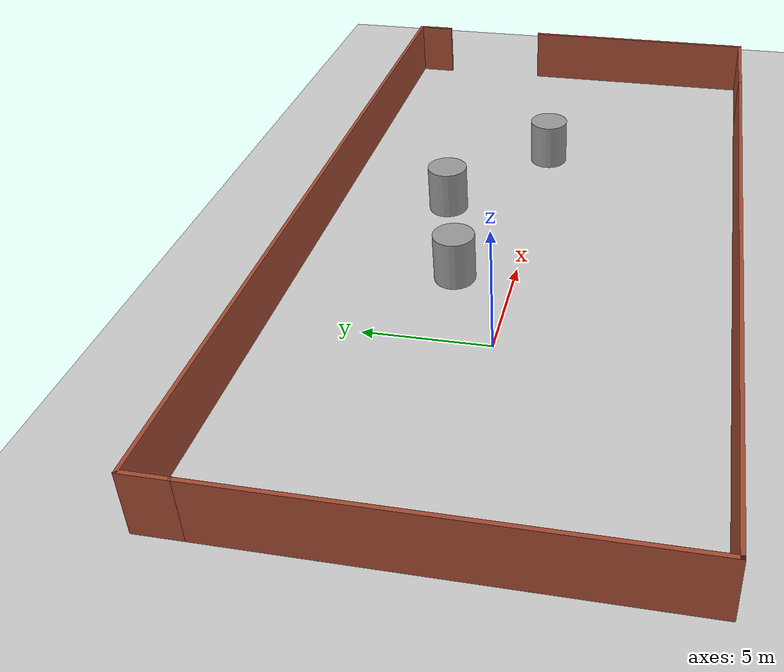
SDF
<sdf version="1.6">
 <world name="default">
  <light name="sun" type="directional">
   <pose>0 0 10 0 -0 0</pose>
   <diffuse>0.8 0.8 0.8 1</diffuse>
   <specular>0.1 0.1 0.1 1</specular>
   <attenuation>
    <range>1000</range>
    <constant>0.9</constant>
    <linear>0.01</linear>
    <quadratic>0.001</quadratic>
   </attenuation>
   <direction>-0.5 0.5 -1</direction>
  </light>
  <model name="ground_plane">
   <static>1</static>
   <link name="link">
    <collision name="collision">
     <geometry><plane><normal>0 0 1</normal><size>100 100</size></plane></geometry>
     <surface><friction><ode><mu>100</mu><mu2>50</mu2></ode></friction></surface>
    </collision>
    <visual name="visual">
     <cast_shadows>0</cast_shadows>
     <geometry><plane><normal>0 0 1</normal><size>100 100</size></plane></geometry>
     <material>
      <script><uri>file://media/materials/scripts/gazebo.material</uri><name>Gazebo/Grey</name></script>
     </material>
    </visual>
   </link>
  </model>
  <gravity>0 0 -9.8</gravity>
  <magnetic_field>6e-06 2.3e-05 -4.2e-05</magnetic_field>
  <atmosphere type="adiabatic"/>
  <physics name="default_physics" default="0" type="ode">
   <max_step_size>0.001</max_step_size>
   <real_time_factor>1</real_time_factor>
   <real_time_update_rate>1000</real_time_update_rate>
  </physics>
  <scene><ambient>0.4 0.4 0.4 1</ambient><background>0.7 0.7 0.7 1</background><shadows>1</shadows></scene>
  <spherical_coordinates>
   <surface_model>EARTH_WGS84</surface_model>
   <latitude_deg>0</latitude_deg>
   <longitude_deg>0</longitude_deg>
   <elevation>0</elevation>
   <heading_deg>0</heading_deg>
  </spherical_coordinates>
  <model name="Building_brick_2">
   <pose>6.86347 0.046159 0 0 -0 0</pose>
   <link name="Wall_1">
    <collision name="Wall_1_Collision">
     <geometry><box><size>16 0.15 2.5</size></box></geometry>
     <pose>0 0 1.25 0 -0 0</pose>
    </collision>
    <visual name="Wall_1_Visual">
     <pose>0 0 1.25 0 -0 0</pose>
     <geometry><box><size>16 0.15 2.5</size></box></geometry>
     <material>
      <script><uri>file://media/materials/scripts/gazebo.material</uri><name>Gazebo/Bricks</name></script>
      <ambient>1 1 1 1</ambient>
     </material>
    </visual>
    <pose>-17.1 -0.8 0 0 0 -1.5708</pose>
   </link>
   <link name="Wall_10">
    <collision name="Wall_10_Collision">
     <geometry><box><size>11 0.15 2.5</size></box></geometry>
     <pose>0 0 1.25 0 -0 0</pose>
    </collision>
    <visual name="Wall_10_Visual">
     <pose>0 0 1.25 0 -0 0</pose>
     <geometry><box><size>11 0.15 2.5</size></box></geometry>
     <material>
      <script><uri>file://media/materials/scripts/gazebo.material</uri><name>Gazebo/Bricks</name></script>
      <ambient>1 1 1 1</ambient>
     </material>
    </visual>
    <pose>17.1 -3.3 0 0 -0 1.5708</pose>
   </link>
   <link name="Wall_2">
    <collision name="Wall_2_Collision">
     <geometry><box><size>29.75 0.15 2.5</size></box></geometry>
     <pose>0 0 1.25 0 -0 0</pose>
    </collision>
    <visual name="Wall_2_Visual">
     <pose>0 0 1.25 0 -0 0</pose>
     <geometry><box><size>29.75 0.15 2.5</size></box></geometry>
     <material>
      <script><uri>file://media/materials/scripts/gazebo.material</uri><name>Gazebo/Bricks</name></script>
      <ambient>1 1 1 1</ambient>
     </material>
    </visual>
    <pose>-2.3 -8.725 0 0 -0 0</pose>
   </link>
   <link name="Wall_5">
    <collision name="Wall_5_Collision">
     <geometry><box><size>1.75 0.15 2.5</size></box></geometry>
     <pose>0 0 1.25 0 -0 0</pose>
    </collision>
    <visual name="Wall_5_Visual">
     <pose>0 0 1.25 0 -0 0</pose>
     <geometry><box><size>1.75 0.15 2.5</size></box></geometry>
     <material>
      <script><uri>file://media/materials/scripts/gazebo.material</uri><name>Gazebo/Bricks</name></script>
      <ambient>1 1 1 1</ambient>
     </material>
    </visual>
    <pose>-17.1 7.925 0 0 -0 1.5708</pose>
   </link>
   <link name="Wall_6">
    <collision name="Wall_6_Collision">
     <geometry><box><size>34.25 0.15 2.5</size></box></geometry>
     <pose>0 0 1.25 0 -0 0</pose>
    </collision>
    <visual name="Wall_6_Visual">
     <pose>0 0 1.25 0 -0 0</pose>
     <geometry><box><size>34.25 0.15 2.5</size></box></geometry>
     <material>
      <script><uri>file://media/materials/scripts/gazebo.material</uri><name>Gazebo/Bricks</name></script>
      <ambient>1 1 1 1</ambient>
     </material>
    </visual>
    <pose>-0.05 8.725 0 0 -0 0</pose>
   </link>
   <link name="Wall_7">
    <collision name="Wall_7_Collision">
     <geometry><box><size>1.75 0.15 2.5</size></box></geometry>
     <pose>0 0 1.25 0 -0 0</pose>
    </collision>
    <visual name="Wall_7_Visual">
     <pose>0 0 1.25 0 -0 0</pose>
     <geometry><box><size>1.75 0.15 2.5</size></box></geometry>
     <material>
      <script><uri>file://media/materials/scripts/gazebo.material</uri><name>Gazebo/Bricks</name></script>
      <ambient>1 1 1 1</ambient>
     </material>
    </visual>
    <pose>17 7.925 0 0 0 -1.5708</pose>
   </link>
   <link name="Wall_9">
    <collision name="Wall_9_Collision">
     <geometry><box><size>4.75 0.15 2.5</size></box></geometry>
     <pose>0 0 1.25 0 -0 0</pose>
    </collision>
    <visual name="Wall_9_Visual">
     <pose>0 0 1.25 0 -0 0</pose>
     <geometry><box><size>4.75 0.15 2.5</size></box></geometry>
     <material>
      <script><uri>file://media/materials/scripts/gazebo.material</uri><name>Gazebo/Bricks</name></script>
      <ambient>1 1 1 1</ambient>
     </material>
    </visual>
    <pose>14.8 -8.725 0 0 -0 0</pose>
   </link>
   <static>1</static>
  </model>
  <model name="obstaculo1_0_clone">
   <link name="link">
    <pose>3.16547 -0.242371 0.551515 0 -0 0</pose>
    <inertial>
     <mass>5.78895</mass>
     <inertia><ixx>3.04756</ixx><ixy>0</ixy><ixz>0</ixz><iyy>3.04756</iyy><iyz>0</iyz><izz>2.0444</izz></inertia>
    </inertial>
    <visual name="visual">
     <geometry><cylinder><radius>0.840424</radius><length>2.04901</length></cylinder></geometry>
     <material>
      <script><name>Gazebo/Grey</name><uri>file://media/materials/scripts/gazebo.material</uri></script>
      <ambient>0.3 0.3 0.3 1</ambient>
      <diffuse>0.7 0.7 0.7 1</diffuse>
      <specular>0.01 0.01 0.01 1</specular>
      <emissive>0 0 0 1</emissive>
     </material>
    </visual>
    <collision name="collision">
     <geometry><cylinder><radius>0.840424</radius><length>2.04901</length></cylinder></geometry>
     <surface>
      <friction>
       <ode><mu>1</mu><mu2>1</mu2><fdir1>0 0 0</fdir1><slip1>0</slip1><slip2>0</slip2></ode>
       <torsional>
        <coefficient>1</coefficient>
        <patch_radius>0</patch_radius>
        <surface_radius>0</surface_radius>
        <use_patch_radius>1</use_patch_radius>
        <ode><slip>0</slip></ode>
       </torsional>
      </friction>
      <bounce><restitution_coefficient>0</restitution_coefficient><threshold>1e+06</threshold></bounce>
      <contact>
       <collide_without_contact>0</collide_without_contact>
       <collide_without_contact_bitmask>1</collide_without_contact_bitmask>
       <collide_bitmask>1</collide_bitmask>
       <ode>
        <soft_cfm>0</soft_cfm>
        <soft_erp>0.2</soft_erp>
        <kp>1e+13</kp>
        <kd>1</kd>
        <max_vel>0.01</max_vel>
        <min_depth>0</min_depth>
       </ode>
       <bullet>
        <split_impulse>1</split_impulse>
        <split_impulse_penetration_threshold>-0.01</split_impulse_penetration_threshold>
        <soft_cfm>0</soft_cfm>
        <soft_erp>0.2</soft_erp>
        <kp>1e+13</kp>
        <kd>1</kd>
       </bullet>
      </contact>
     </surface>
    </collision>
   </link>
   <static>0</static>
   <pose>0.894507 2.60475 0.47299 0 -0 0</pose>
  </model>
  <model name="obstaculo1_0_clone_clone">
   <link name="link">
    <pose>3.16547 -0.242371 0.551515 0 -0 0</pose>
    <inertial>
     <mass>5.78895</mass>
     <inertia><ixx>3.04756</ixx><ixy>0</ixy><ixz>0</ixz><iyy>3.04756</iyy><iyz>0</iyz><izz>2.0444</izz></inertia>
    </inertial>
    <visual name="visual">
     <geometry><cylinder><radius>0.840424</radius><length>2.04901</length></cylinder></geometry>
     <material>
      <script><name>Gazebo/Grey</name><uri>file://media/materials/scripts/gazebo.material</uri></script>
      <ambient>0.3 0.3 0.3 1</ambient>
      <diffuse>0.7 0.7 0.7 1</diffuse>
      <specular>0.01 0.01 0.01 1</specular>
      <emissive>0 0 0 1</emissive>
     </material>
    </visual>
    <collision name="collision">
     <geometry><cylinder><radius>0.840424</radius><length>2.04901</length></cylinder></geometry>
     <surface>
      <friction>
       <ode><mu>1</mu><mu2>1</mu2><fdir1>0 0 0</fdir1><slip1>0</slip1><slip2>0</slip2></ode>
       <torsional>
        <coefficient>1</coefficient>
        <patch_radius>0</patch_radius>
        <surface_radius>0</surface_radius>
        <use_patch_radius>1</use_patch_radius>
        <ode><slip>0</slip></ode>
       </torsional>
      </friction>
      <bounce><restitution_coefficient>0</restitution_coefficient><threshold>1e+06</threshold></bounce>
      <contact>
       <collide_without_contact>0</collide_without_contact>
       <collide_without_contact_bitmask>1</collide_without_contact_bitmask>
       <collide_bitmask>1</collide_bitmask>
       <ode>
        <soft_cfm>0</soft_cfm>
        <soft_erp>0.2</soft_erp>
        <kp>1e+13</kp>
        <kd>1</kd>
        <max_vel>0.01</max_vel>
        <min_depth>0</min_depth>
       </ode>
       <bullet>
        <split_impulse>1</split_impulse>
        <split_impulse_penetration_threshold>-0.01</split_impulse_penetration_threshold>
        <soft_cfm>0</soft_cfm>
        <soft_erp>0.2</soft_erp>
        <kp>1e+13</kp>
        <kd>1</kd>
       </bullet>
      </contact>
     </surface>
    </collision>
   </link>
   <static>0</static>
   <pose>11.2574 0.40533 0.47299 0 -0 0</pose>
  </model>
  <model name="obstaculo1_0_clone_clone_clone">
   <link name="link">
    <pose>3.16547 -0.242371 0.551515 0 -0 0</pose>
    <inertial>
     <mass>5.78895</mass>
     <inertia><ixx>3.04756</ixx><ixy>0</ixy><ixz>0</ixz><iyy>3.04756</iyy><iyz>0</iyz><izz>2.0444</izz></inertia>
    </inertial>
    <visual name="visual">
     <geometry><cylinder><radius>0.840424</radius><length>2.04901</length></cylinder></geometry>
     <material>
      <script><name>Gazebo/Grey</name><uri>file://media/materials/scripts/gazebo.material</uri></script>
      <ambient>0.3 0.3 0.3 1</ambient>
      <diffuse>0.7 0.7 0.7 1</diffuse>
      <specular>0.01 0.01 0.01 1</specular>
      <emissive>0 0 0 1</emissive>
     </material>
    </visual>
    <collision name="collision">
     <geometry><cylinder><radius>0.840424</radius><length>2.04901</length></cylinder></geometry>
     <surface>
      <friction>
       <ode><mu>1</mu><mu2>1</mu2><fdir1>0 0 0</fdir1><slip1>0</slip1><slip2>0</slip2></ode>
       <torsional>
        <coefficient>1</coefficient>
        <patch_radius>0</patch_radius>
        <surface_radius>0</surface_radius>
        <use_patch_radius>1</use_patch_radius>
        <ode><slip>0</slip></ode>
       </torsional>
      </friction>
      <bounce><restitution_coefficient>0</restitution_coefficient><threshold>1e+06</threshold></bounce>
      <contact>
       <collide_without_contact>0</collide_without_contact>
       <collide_without_contact_bitmask>1</collide_without_contact_bitmask>
       <collide_bitmask>1</collide_bitmask>
       <ode>
        <soft_cfm>0</soft_cfm>
        <soft_erp>0.2</soft_erp>
        <kp>1e+13</kp>
        <kd>1</kd>
        <max_vel>0.01</max_vel>
        <min_depth>0</min_depth>
       </ode>
       <bullet>
        <split_impulse>1</split_impulse>
        <split_impulse_penetration_threshold>-0.01</split_impulse_penetration_threshold>
        <soft_cfm>0</soft_cfm>
        <soft_erp>0.2</soft_erp>
        <kp>1e+13</kp>
        <kd>1</kd>
       </bullet>
      </contact>
     </surface>
    </collision>
   </link>
   <static>0</static>
   <pose>6.12581 4.11081 0.47299 0 -0 0</pose>
  </model>
 </world>
</sdf>
